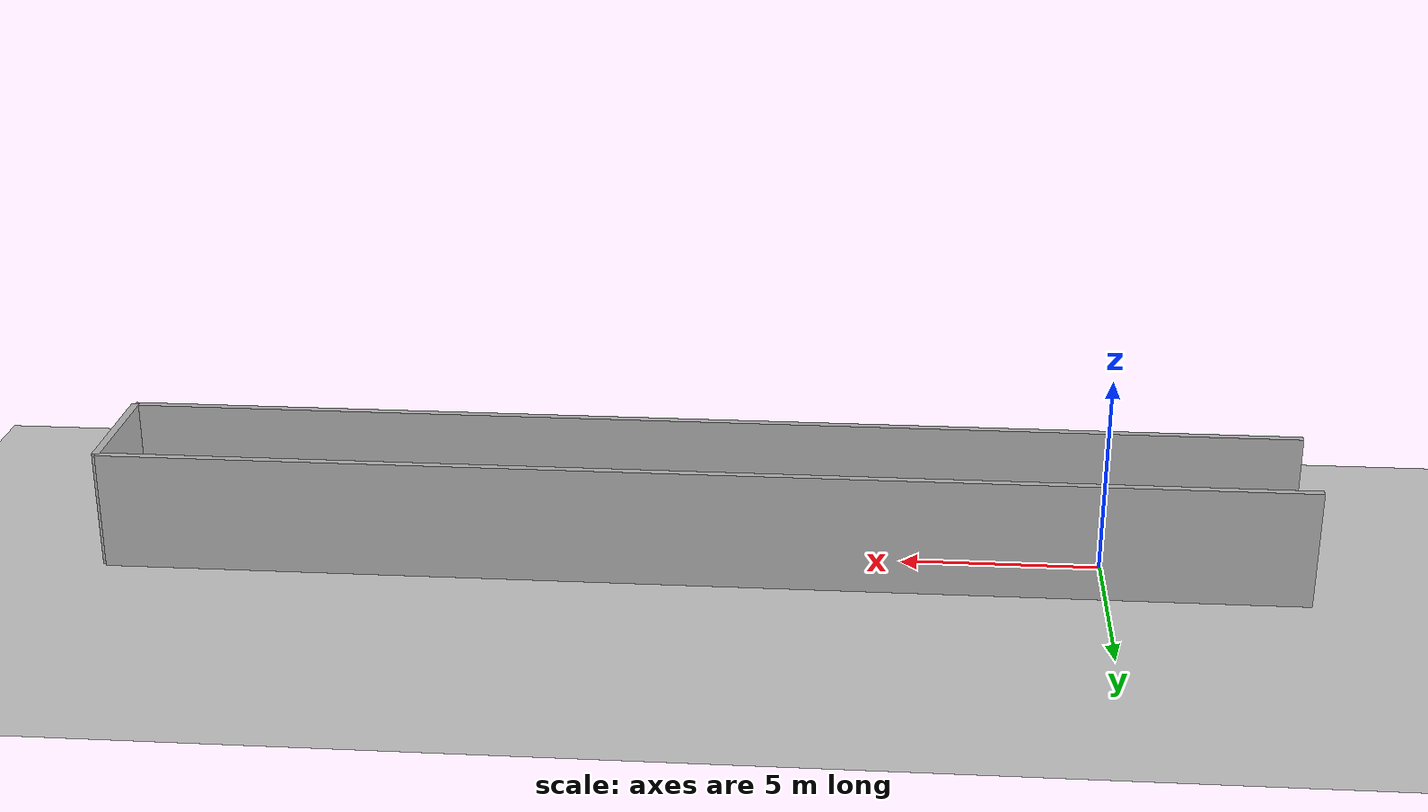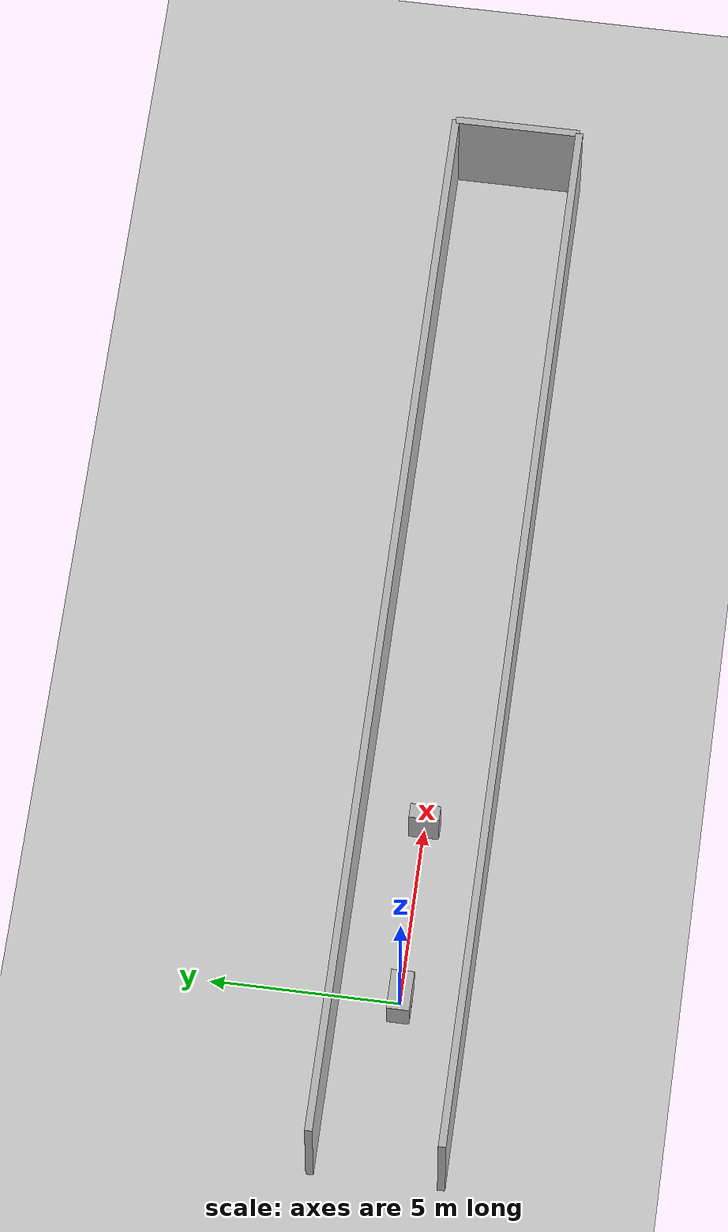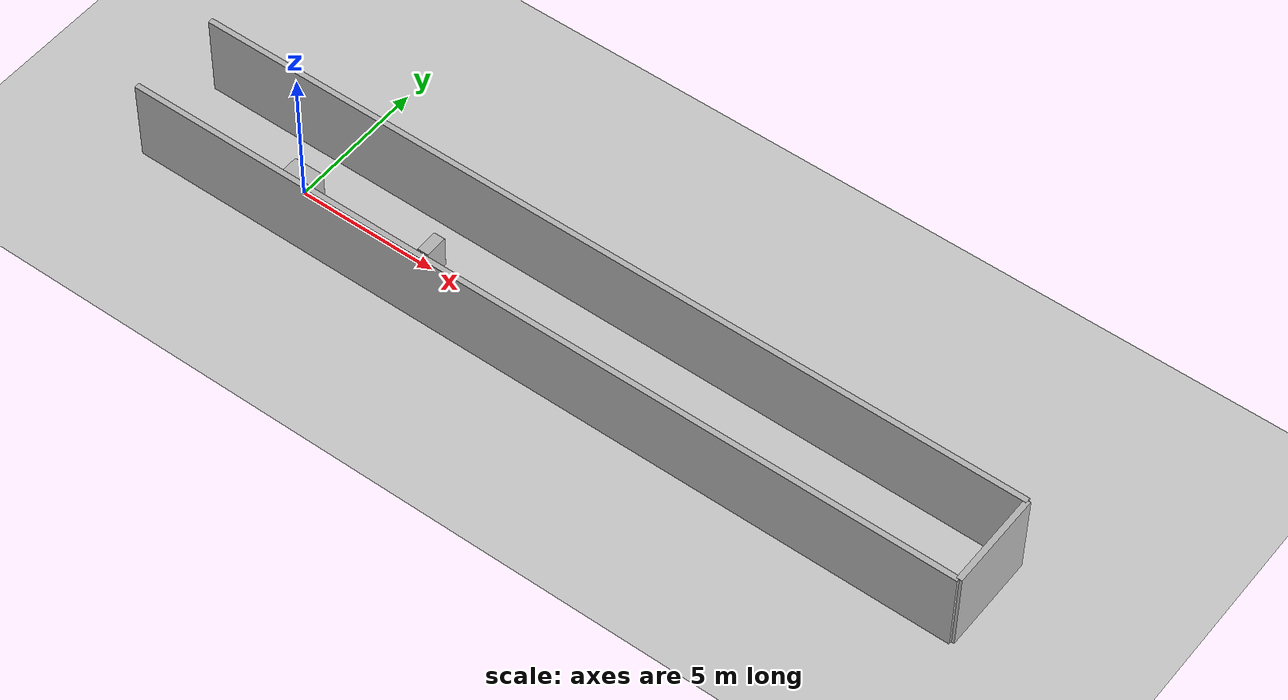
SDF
<?xml version='1.0' encoding='utf-8'?>
<sdf version="1.9">
  <world name="gouda_corridor">
    <physics name="physics" type="ignored">
      <max_step_size>0.002</max_step_size>
      <real_time_factor>1</real_time_factor>
    </physics>
    <plugin filename="gz-sim-physics-system" name="gz::sim::systems::Physics" />
    <plugin filename="gz-sim-user-commands-system" name="gz::sim::systems::UserCommands" />
    <plugin filename="gz-sim-scene-broadcaster-system" name="gz::sim::systems::SceneBroadcaster" />
    <plugin filename="gz-sim-sensors-system" name="gz::sim::systems::Sensors">
      <render_engine>ogre</render_engine>
    </plugin>
    <plugin filename="gz-sim-imu-system" name="gz::sim::systems::Imu" />
    <light name="sun" type="directional">
      <pose>0 0 10 0 0 0</pose>
      <direction>-.5 .1 -1</direction>
      <diffuse>.8 .8 .8 1</diffuse>
    </light>
    <model name="ground">
      <static>true</static>
      <link name="ground">
        <collision name="ground">
          <geometry>
            <plane>
              <normal>0 0 1</normal>
              <size>100 100</size>
            </plane>
          </geometry>
        </collision>
        <visual name="ground">
          <geometry>
            <plane>
              <normal>0 0 1</normal>
              <size>100 100</size>
            </plane>
          </geometry>
        </visual>
      </link>
    </model>
    <model name="left_wall">
      <static>true</static>
      <pose>10 1.7 1.5 0 0 0</pose>
      <link name="link">
        <collision name="box">
          <geometry>
            <box>
              <size>30 .2 3</size>
            </box>
          </geometry>
        </collision>
        <visual name="box">
          <geometry>
            <box>
              <size>30 .2 3</size>
            </box>
          </geometry>
        </visual>
      </link>
    </model>
    <model name="right_wall">
      <static>true</static>
      <pose>10 -1.7 1.5 0 0 0</pose>
      <link name="link">
        <collision name="box">
          <geometry>
            <box>
              <size>30 .2 3</size>
            </box>
          </geometry>
        </collision>
        <visual name="box">
          <geometry>
            <box>
              <size>30 .2 3</size>
            </box>
          </geometry>
        </visual>
      </link>
    </model>
    <model name="end_wall">
      <static>true</static>
      <pose>25 0 1.5 0 0 0</pose>
      <link name="link">
        <collision name="box">
          <geometry>
            <box>
              <size>.2 3.4 3</size>
            </box>
          </geometry>
        </collision>
        <visual name="box">
          <geometry>
            <box>
              <size>.2 3.4 3</size>
            </box>
          </geometry>
        </visual>
      </link>
    </model>
    <model name="obstacle">
      <static>true</static>
      <pose>5 0 .6 0 0 0</pose>
      <link name="link">
        <collision name="box">
          <geometry>
            <box>
              <size>.4 .8 1.2</size>
            </box>
          </geometry>
        </collision>
        <visual name="box">
          <geometry>
            <box>
              <size>.4 .8 1.2</size>
            </box>
          </geometry>
        </visual>
      </link>
    </model>
    <model name="gouda">
      <pose>0 0 .005 0 0 0</pose>
      <link name="body">
        <pose>0 0 .5 0 0 0</pose>
        <inertial>
          <mass>100</mass>
          <inertia>
            <ixx>10.0</ixx>
            <iyy>10.0</iyy>
            <izz>10.0</izz>
          </inertia>
        </inertial>
        <collision name="body_box">
          <geometry>
            <box>
              <size>1.105 .600 .900</size>
            </box>
          </geometry>
        </collision>
        <visual name="body_box">
          <geometry>
            <box>
              <size>1.105 .600 .900</size>
            </box>
          </geometry>
          <visibility_flags>2</visibility_flags>
        </visual>
        <sensor name="imu" type="imu">
          <always_on>true</always_on>
          <update_rate>100</update_rate>
          <topic>/gouda/imu</topic>
        </sensor>
        <sensor name="lidar" type="gpu_lidar">
          <pose>0 0 .6 0 0 0</pose>
          <always_on>true</always_on>
          <update_rate>10</update_rate>
          <topic>/gouda/lidar</topic>
          <lidar>
            <scan>
              <horizontal>
                <samples>720</samples>
                <resolution>1</resolution>
                <min_angle>-3.14159265359</min_angle>
                <max_angle>3.14159265359</max_angle>
              </horizontal>
              <vertical>
                <samples>16</samples>
                <resolution>1</resolution>
                <min_angle>-0.4</min_angle>
                <max_angle>0.3</max_angle>
              </vertical>
            </scan>
            <range>
              <min>0.4</min>
              <max>30</max>
              <resolution>0.01</resolution>
            </range>
            <noise>
              <type>gaussian</type>
              <mean>0</mean>
              <stddev>0.01</stddev>
            </noise>
            <visibility_mask>1</visibility_mask>
          </lidar>
        </sensor>
      </link>
      <link name="left_wheel">
        <pose>0 0.275 .16 -1.57079632679 0 0</pose>
        <inertial>
          <mass>2</mass>
          <inertia>
            <ixx>0.2</ixx>
            <iyy>0.2</iyy>
            <izz>0.2</izz>
          </inertia>
        </inertial>
        <collision name="wheel">
          <geometry>
            <cylinder>
              <radius>0.16</radius>
              <length>0.05</length>
            </cylinder>
          </geometry>
        </collision>
        <visual name="wheel">
          <geometry>
            <cylinder>
              <radius>0.16</radius>
              <length>0.05</length>
            </cylinder>
          </geometry>
          <visibility_flags>2</visibility_flags>
        </visual>
      </link>
      <joint name="left_joint" type="revolute">
        <parent>body</parent>
        <child>left_wheel</child>
        <axis>
          <xyz>0 0 1</xyz>
        </axis>
      </joint>
      <link name="right_wheel">
        <pose>0 -0.275 .16 -1.57079632679 0 0</pose>
        <inertial>
          <mass>2</mass>
          <inertia>
            <ixx>0.2</ixx>
            <iyy>0.2</iyy>
            <izz>0.2</izz>
          </inertia>
        </inertial>
        <collision name="wheel">
          <geometry>
            <cylinder>
              <radius>0.16</radius>
              <length>0.05</length>
            </cylinder>
          </geometry>
        </collision>
        <visual name="wheel">
          <geometry>
            <cylinder>
              <radius>0.16</radius>
              <length>0.05</length>
            </cylinder>
          </geometry>
          <visibility_flags>2</visibility_flags>
        </visual>
      </link>
      <joint name="right_joint" type="revolute">
        <parent>body</parent>
        <child>right_wheel</child>
        <axis>
          <xyz>0 0 1</xyz>
        </axis>
      </joint>
      <link name="front_support">
        <pose>0.43 0 .04 0 0 0</pose>
        <inertial>
          <mass>0.1</mass>
          <inertia>
            <ixx>0.010000000000000002</ixx>
            <iyy>0.010000000000000002</iyy>
            <izz>0.010000000000000002</izz>
          </inertia>
        </inertial>
        <collision name="support">
          <geometry>
            <sphere>
              <radius>0.04</radius>
            </sphere>
          </geometry>
          <surface>
            <friction>
              <ode>
                <mu>0</mu>
                <mu2>0</mu2>
              </ode>
            </friction>
          </surface>
        </collision>
        <visual name="support">
          <geometry>
            <sphere>
              <radius>0.04</radius>
            </sphere>
          </geometry>
          <visibility_flags>2</visibility_flags>
        </visual>
      </link>
      <joint name="front_fixed" type="fixed">
        <parent>body</parent>
        <child>front_support</child>
      </joint>
      <link name="rear_support">
        <pose>-0.43 0 .04 0 0 0</pose>
        <inertial>
          <mass>0.1</mass>
          <inertia>
            <ixx>0.010000000000000002</ixx>
            <iyy>0.010000000000000002</iyy>
            <izz>0.010000000000000002</izz>
          </inertia>
        </inertial>
        <collision name="support">
          <geometry>
            <sphere>
              <radius>0.04</radius>
            </sphere>
          </geometry>
          <surface>
            <friction>
              <ode>
                <mu>0</mu>
                <mu2>0</mu2>
              </ode>
            </friction>
          </surface>
        </collision>
        <visual name="support">
          <geometry>
            <sphere>
              <radius>0.04</radius>
            </sphere>
          </geometry>
          <visibility_flags>2</visibility_flags>
        </visual>
      </link>
      <joint name="rear_fixed" type="fixed">
        <parent>body</parent>
        <child>rear_support</child>
      </joint>
      <plugin filename="gz-sim-diff-drive-system" name="gz::sim::systems::DiffDrive">
        <left_joint>left_joint</left_joint>
        <right_joint>right_joint</right_joint>
        <wheel_separation>0.55</wheel_separation>
        <wheel_radius>0.16</wheel_radius>
        <topic>/model/gouda/cmd_vel</topic>
        <odom_topic>/model/gouda/odometry</odom_topic>
        <frame_id>odom_lidar</frame_id>
        <child_frame_id>base_link</child_frame_id>
        <odom_publish_frequency>50</odom_publish_frequency>
      </plugin>
      <plugin filename="gz-sim-odometry-publisher-system" name="gz::sim::systems::OdometryPublisher">
        <odom_topic>/model/gouda/ground_truth</odom_topic>
        <odom_frame>odom_lidar</odom_frame>
        <robot_base_frame>base_link</robot_base_frame>
        <dimensions>3</dimensions>
        <odom_publish_frequency>50</odom_publish_frequency>
      </plugin>
    </model>
  </world>
</sdf>
